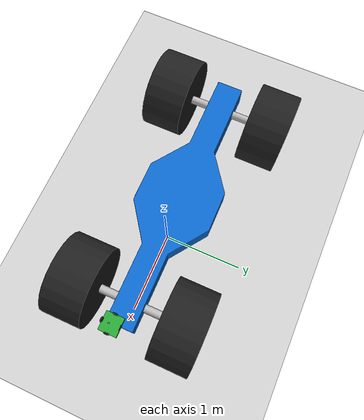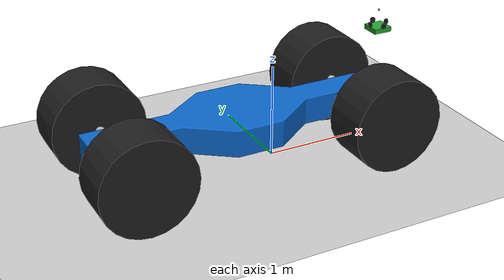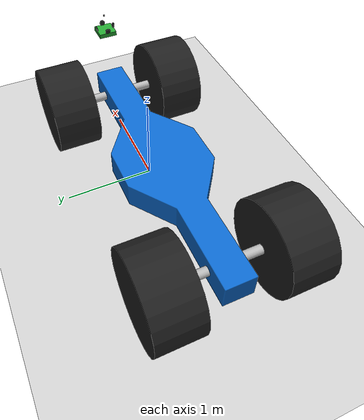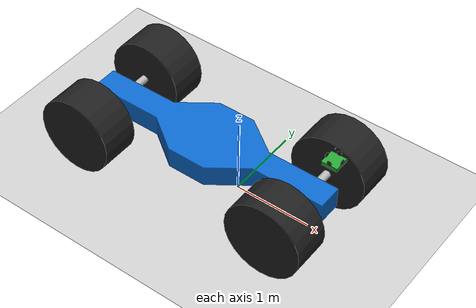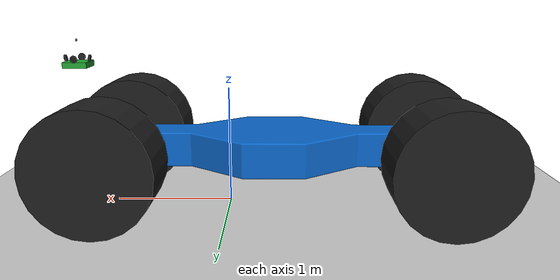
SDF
<sdf version="1.6">
 <world name="default">
  <scene><ambient>0.4 0.4 0.4 1</ambient><background>0.7 0.7 0.7 1</background><shadows>1</shadows></scene>
  <light name="sun" type="directional">
   <pose>0 0 10 0 -0 0</pose>
   <diffuse>0.8 0.8 0.8 1</diffuse>
   <specular>0.2 0.2 0.2 1</specular>
   <attenuation>
    <range>1000</range>
    <constant>0.9</constant>
    <linear>0.01</linear>
    <quadratic>0.001</quadratic>
   </attenuation>
   <direction>-0.5 0.1 -0.9</direction>
  </light>
  <model name="ground_plane">
   <static>1</static>
   <link name="link">
    <collision name="collision">
     <geometry><plane><normal>0 0 1</normal><size>100 100</size></plane></geometry>
     <surface>
      <contact><collide_bitmask>65535</collide_bitmask></contact>
      <friction><ode><mu>100</mu><mu2>50</mu2></ode></friction>
     </surface>
    </collision>
    <visual name="visual">
     <cast_shadows>0</cast_shadows>
     <geometry><plane><normal>0 0 1</normal><size>100 100</size></plane></geometry>
     <material>
      <script><uri>file://media/materials/scripts/gazebo.material</uri><name>Gazebo/Grey</name></script>
     </material>
    </visual>
   </link>
  </model>
  <physics name="default_physics" default="0" type="ode">
   <real_time_update_rate>1000</real_time_update_rate>
   <max_step_size>0.001</max_step_size>
   <real_time_factor>1</real_time_factor>
   <ode>
    <solver>
     <type>quick</type>
     <iters>150</iters>
     <precon_iters>0</precon_iters>
     <sor>1.4</sor>
     <use_dynamic_moi_rescaling>1</use_dynamic_moi_rescaling>
    </solver>
    <constraints>
     <cfm>1e-05</cfm>
     <erp>0.2</erp>
     <contact_max_correcting_vel>2000</contact_max_correcting_vel>
     <contact_surface_layer>0.01</contact_surface_layer>
    </constraints>
   </ode>
  </physics>
  <gravity>0 0 -9.8</gravity>
  <magnetic_field>6e-06 2.3e-05 -4.2e-05</magnetic_field>
  <atmosphere type="adiabatic"/>
  <audio><device>default</device></audio>
  <spherical_coordinates>
   <surface_model>EARTH_WGS84</surface_model>
   <latitude_deg>0</latitude_deg>
   <longitude_deg>0</longitude_deg>
   <elevation>0</elevation>
   <heading_deg>0</heading_deg>
  </spherical_coordinates>
  <model name="robot">
   <link name="base_link">
    <inertial>
     <pose>0.003293 0 0.001397 0 -0 0</pose>
     <mass>501</mass>
     <inertia>
      <ixx>12.2842</ixx>
      <ixy>0</ixy>
      <ixz>-1.15269</ixz>
      <iyy>379.501</iyy>
      <iyz>0</iyz>
      <izz>368.474</izz>
     </inertia>
    </inertial>
    <collision name="base_link_collision"><geometry><sphere><radius>0.01</radius></sphere></geometry></collision>
    <collision name="base_link_fixed_joint_lump__baseframe_collision_1">
     <pose>0 0 0 1.5708 -0 0</pose>
     <geometry>
      <mesh><scale>1 1 1</scale><uri>/home/sandstone/catkin_ws/src/et_sim/meshes/baseframe.dae</uri></mesh>
     </geometry>
    </collision>
    <collision name="base_link_fixed_joint_lump__back_steeraxis_collision_2">
     <pose>-1.35 0 0 1.5708 -0 0</pose>
     <geometry><cylinder><length>0.8</length><radius>0.05</radius></cylinder></geometry>
    </collision>
    <collision name="base_link_fixed_joint_lump__camsys_base_collision_3">
     <pose>1.65 0 0.7 0 -0 0</pose>
     <geometry><box><size>0.2 0.2 0.05</size></box></geometry>
    </collision>
    <collision name="base_link_fixed_joint_lump__zed2_frame_collision_4">
     <pose>1.65 0 0.9 0 0.174533 0</pose>
     <geometry><box><size>0.01 0.01 0.01</size></box></geometry>
    </collision>
    <collision name="base_link_fixed_joint_lump__zed2_optical_frame_collision_5">
     <pose>1.65 0 0.9 -1.74533 -0 -1.5708</pose>
     <geometry><cylinder><length>0.01</length><radius>0.01</radius></cylinder></geometry>
    </collision>
    <collision name="base_link_fixed_joint_lump__camsys_east_cam_link_collision_6">
     <pose>1.65 -0.1 0.75 0 0.174533 -1.5708</pose>
     <geometry><cylinder><length>0.01</length><radius>0.03</radius></cylinder></geometry>
    </collision>
    <collision name="base_link_fixed_joint_lump__camsys_north_cam_link_collision_7">
     <pose>1.75 0 0.75 0 0.174533 0</pose>
     <geometry><cylinder><length>0.01</length><radius>0.03</radius></cylinder></geometry>
    </collision>
    <collision name="base_link_fixed_joint_lump__camsys_south_cam_link_collision_8">
     <pose>1.55 0 0.75 0 0.174533 3.14159</pose>
     <geometry><cylinder><length>0.01</length><radius>0.03</radius></cylinder></geometry>
    </collision>
    <collision name="base_link_fixed_joint_lump__camsys_west_cam_link_collision_9">
     <pose>1.65 0.1 0.75 0 0.174533 1.5708</pose>
     <geometry><cylinder><length>0.01</length><radius>0.03</radius></cylinder></geometry>
    </collision>
    <collision name="base_link_fixed_joint_lump__front_steeraxis_collision_10">
     <pose>1.35 0 0 1.5708 -0 0</pose>
     <geometry><cylinder><length>0.8</length><radius>0.05</radius></cylinder></geometry>
    </collision>
    <visual name="base_link_visual"><geometry><sphere><radius>0.01</radius></sphere></geometry></visual>
    <visual name="base_link_fixed_joint_lump__baseframe_visual_1">
     <pose>0 0 0 1.5708 -0 0</pose>
     <geometry>
      <mesh><scale>1 1 1</scale><uri>/home/sandstone/catkin_ws/src/et_sim/meshes/baseframe.dae</uri></mesh>
     </geometry>
    </visual>
    <visual name="base_link_fixed_joint_lump__back_steeraxis_visual_2">
     <pose>-1.35 0 0 1.5708 -0 0</pose>
     <geometry><cylinder><length>0.8</length><radius>0.05</radius></cylinder></geometry>
    </visual>
    <visual name="base_link_fixed_joint_lump__camsys_base_visual_3">
     <pose>1.65 0 0.7 0 -0 0</pose>
     <geometry><box><size>0.2 0.2 0.05</size></box></geometry>
     <material>
      <script><name>Gazebo/Green</name><uri>file://media/materials/scripts/gazebo.material</uri></script>
     </material>
    </visual>
    <visual name="base_link_fixed_joint_lump__zed2_frame_visual_4">
     <pose>1.65 0 0.9 0 0.174533 0</pose>
     <geometry><box><size>0.01 0.01 0.01</size></box></geometry>
     <material><script><uri>__default__</uri><name>__default__</name></script></material>
    </visual>
    <visual name="base_link_fixed_joint_lump__zed2_optical_frame_visual_5">
     <pose>1.65 0 0.9 -1.74533 -0 -1.5708</pose>
     <geometry><cylinder><length>0.01</length><radius>0.01</radius></cylinder></geometry>
    </visual>
    <visual name="base_link_fixed_joint_lump__camsys_east_cam_link_visual_6">
     <pose>1.65 -0.1 0.75 3.14159 1.39626 1.5708</pose>
     <geometry><cylinder><length>0.01</length><radius>0.03</radius></cylinder></geometry>
     <material>
      <script><name>Gazebo/Black</name><uri>file://media/materials/scripts/gazebo.material</uri></script>
     </material>
    </visual>
    <visual name="base_link_fixed_joint_lump__camsys_north_cam_link_visual_7">
     <pose>1.75 0 0.75 3.14159 1.39626 3.14159</pose>
     <geometry><cylinder><length>0.01</length><radius>0.03</radius></cylinder></geometry>
     <material>
      <script><name>Gazebo/Black</name><uri>file://media/materials/scripts/gazebo.material</uri></script>
     </material>
    </visual>
    <visual name="base_link_fixed_joint_lump__camsys_south_cam_link_visual_8">
     <pose>1.55 0 0.75 3.14159 1.39626 0</pose>
     <geometry><cylinder><length>0.01</length><radius>0.03</radius></cylinder></geometry>
     <material>
      <script><name>Gazebo/Black</name><uri>file://media/materials/scripts/gazebo.material</uri></script>
     </material>
    </visual>
    <visual name="base_link_fixed_joint_lump__camsys_west_cam_link_visual_9">
     <pose>1.65 0.1 0.75 -3.14159 1.39626 -1.5708</pose>
     <geometry><cylinder><length>0.01</length><radius>0.03</radius></cylinder></geometry>
     <material>
      <script><name>Gazebo/Black</name><uri>file://media/materials/scripts/gazebo.material</uri></script>
     </material>
    </visual>
    <visual name="base_link_fixed_joint_lump__front_steeraxis_visual_10">
     <pose>1.35 0 0 1.5708 -0 0</pose>
     <geometry><cylinder><length>0.8</length><radius>0.05</radius></cylinder></geometry>
    </visual>
    <sensor name="zed2_frame_sensor" type="depth">
     <always_on>1</always_on>
     <update_rate>20</update_rate>
     <camera name="__default__">
      <horizontal_fov>1.91986</horizontal_fov>
      <image><format>R8G8B8</format><width>1920</width><height>1080</height></image>
      <clip><near>0.03</near><far>25</far></clip>
     </camera>
     <plugin name="zed2_frame_controller" filename="libgazebo_ros_openni_kinect.so">
      <alwaysOn>1</alwaysOn>
      <updateRate>20.0</updateRate>
      <cameraName>zed2</cameraName>
      <imageTopicName>zed2/ir/image_raw</imageTopicName>
      <cameraInfoTopicName>zed2/ir/camera_info</cameraInfoTopicName>
      <depthImageTopicName>zed2/depth/image_raw</depthImageTopicName>
      <depthImageCameraInfoTopicName>zed2/depth/camera_info</depthImageCameraInfoTopicName>
      <pointCloudTopicName>zed2/depth/points</pointCloudTopicName>
      <frameName>zed2_optical_frame</frameName>
      <pointCloudCutoff>0.5</pointCloudCutoff>
      <distortionK1>0.00000001</distortionK1>
      <distortionK2>0.00000001</distortionK2>
      <distortionK3>0.00000001</distortionK3>
      <distortionT1>0.00000001</distortionT1>
      <distortionT2>0.00000001</distortionT2>
      <CxPrime>0</CxPrime>
      <Cx>0</Cx>
      <Cy>0</Cy>
      <focalLength>0</focalLength>
      <hackBaseline>0</hackBaseline>
      <robotNamespace>/</robotNamespace>
     </plugin>
     <pose>1.65 0 0.9 0 0.174533 0</pose>
    </sensor>
    <sensor name="zed2_frame_sensor" type="depth">
     <always_on>1</always_on>
     <update_rate>20</update_rate>
     <camera name="__default__">
      <horizontal_fov>1.91986</horizontal_fov>
      <image><format>R8G8B8</format><width>1920</width><height>1080</height></image>
      <clip><near>0.01</near><far>25</far></clip>
     </camera>
     <plugin name="zed2_frame_controller" filename="libgazebo_ros_openni_kinect.so">
      <alwaysOn>1</alwaysOn>
      <updateRate>20.0</updateRate>
      <cameraName>zed2</cameraName>
      <imageTopicName>zed2/rgb/image_raw</imageTopicName>
      <cameraInfoTopicName>zed2/rgb/camera_info</cameraInfoTopicName>
      <depthImageTopicName>zed2/depth/image_raw</depthImageTopicName>
      <depthImageCameraInfoTopicName>zed2/depth/camera_info</depthImageCameraInfoTopicName>
      <pointCloudTopicName>zed2/rgb/points</pointCloudTopicName>
      <frameName>zed2_optical_frame</frameName>
      <pointCloudCutoff>0.5</pointCloudCutoff>
      <distortionK1>0.00000001</distortionK1>
      <distortionK2>0.00000001</distortionK2>
      <distortionK3>0.00000001</distortionK3>
      <distortionT1>0.00000001</distortionT1>
      <distortionT2>0.00000001</distortionT2>
      <CxPrime>0</CxPrime>
      <Cx>0</Cx>
      <Cy>0</Cy>
      <focalLength>0</focalLength>
      <hackBaseline>0</hackBaseline>
      <robotNamespace>/</robotNamespace>
     </plugin>
     <pose>1.65 0 0.9 0 0.174533 0</pose>
    </sensor>
    <sensor name="camsys_east_cam_camera_sensor" type="camera">
     <update_rate>50</update_rate>
     <camera name="__default__">
      <horizontal_fov>1.91986</horizontal_fov>
      <image><format>R8G8B8</format><width>4192</width><height>3120</height></image>
      <clip><near>0.01</near><far>100</far></clip>
     </camera>
     <plugin name="camsys_east_cam_camera_controller" filename="libgazebo_ros_camera.so">
      <cameraName>camsys_east_cam</cameraName>
      <imageTopicName>camsys_east_topic</imageTopicName>
      <cameraInfoTopicName>camsys_east_info_topic</cameraInfoTopicName>
      <frameName>camsys_east_cam_optical_frame</frameName>
      <robotNamespace>/</robotNamespace>
     </plugin>
     <pose>1.65 -0.1 0.75 0 0.174533 -1.5708</pose>
    </sensor>
    <sensor name="camsys_north_cam_camera_sensor" type="camera">
     <update_rate>50</update_rate>
     <camera name="__default__">
      <horizontal_fov>1.91986</horizontal_fov>
      <image><format>R8G8B8</format><width>4192</width><height>3120</height></image>
      <clip><near>0.01</near><far>100</far></clip>
     </camera>
     <plugin name="camsys_north_cam_camera_controller" filename="libgazebo_ros_camera.so">
      <cameraName>camsys_north_cam</cameraName>
      <imageTopicName>camsys_north_topic</imageTopicName>
      <cameraInfoTopicName>camsys_north_info_topic</cameraInfoTopicName>
      <frameName>camsys_north_cam_optical_frame</frameName>
      <robotNamespace>/</robotNamespace>
     </plugin>
     <pose>1.75 0 0.75 0 0.174533 0</pose>
    </sensor>
    <sensor name="camsys_south_cam_camera_sensor" type="camera">
     <update_rate>50</update_rate>
     <camera name="__default__">
      <horizontal_fov>1.91986</horizontal_fov>
      <image><format>R8G8B8</format><width>4192</width><height>3120</height></image>
      <clip><near>0.01</near><far>100</far></clip>
     </camera>
     <plugin name="camsys_south_cam_camera_controller" filename="libgazebo_ros_camera.so">
      <cameraName>camsys_south_cam</cameraName>
      <imageTopicName>camsys_south_topic</imageTopicName>
      <cameraInfoTopicName>camsys_south_info_topic</cameraInfoTopicName>
      <frameName>camsys_south_cam_optical_frame</frameName>
      <robotNamespace>/</robotNamespace>
     </plugin>
     <pose>1.55 0 0.75 0 0.174533 3.14159</pose>
    </sensor>
    <sensor name="camsys_west_cam_camera_sensor" type="camera">
     <update_rate>50</update_rate>
     <camera name="__default__">
      <horizontal_fov>1.91986</horizontal_fov>
      <image><format>R8G8B8</format><width>4192</width><height>3120</height></image>
      <clip><near>0.01</near><far>100</far></clip>
     </camera>
     <plugin name="camsys_west_cam_camera_controller" filename="libgazebo_ros_camera.so">
      <cameraName>camsys_west_cam</cameraName>
      <imageTopicName>camsys_west_topic</imageTopicName>
      <cameraInfoTopicName>camsys_west_info_topic</cameraInfoTopicName>
      <frameName>camsys_west_cam_optical_frame</frameName>
      <robotNamespace>/</robotNamespace>
     </plugin>
     <pose>1.65 0.1 0.75 0 0.174533 1.5708</pose>
    </sensor>
   </link>
   <link name="back_left_wheel">
    <pose>-1.35 0.65 0 0 -0 0</pose>
    <inertial>
     <mass>100</mass>
     <inertia><ixx>8.33333</ixx><ixy>0</ixy><ixz>0</ixz><iyy>8.33333</iyy><iyz>0</iyz><izz>12.5</izz></inertia>
    </inertial>
    <collision name="back_left_wheel_collision">
     <pose>0 0 0 1.5708 -0 0</pose>
     <geometry><cylinder><length>0.5</length><radius>0.5</radius></cylinder></geometry>
     <surface>
      <contact><ode><kp>1e+09</kp><kd>1</kd></ode></contact>
      <friction><ode><mu>10</mu><mu2>10</mu2></ode></friction>
     </surface>
    </collision>
    <visual name="back_left_wheel_visual">
     <pose>0 0 0 1.5708 -0 0</pose>
     <geometry><cylinder><length>0.5</length><radius>0.5</radius></cylinder></geometry>
     <material>
      <script><name>Gazebo/Black</name><uri>file://media/materials/scripts/gazebo.material</uri></script>
     </material>
    </visual>
   </link>
   <joint name="back_left_wheel_joint" type="revolute">
    <child>back_left_wheel</child>
    <parent>base_link</parent>
    <axis>
     <xyz>0 1 0</xyz>
     <limit><lower>-1e+16</lower><upper>1e+16</upper></limit>
     <dynamics><spring_reference>0</spring_reference><spring_stiffness>0</spring_stiffness></dynamics>
     <use_parent_model_frame>1</use_parent_model_frame>
    </axis>
   </joint>
   <link name="back_right_wheel">
    <pose>-1.35 -0.65 0 0 -0 0</pose>
    <inertial>
     <mass>100</mass>
     <inertia><ixx>8.33333</ixx><ixy>0</ixy><ixz>0</ixz><iyy>8.33333</iyy><iyz>0</iyz><izz>12.5</izz></inertia>
    </inertial>
    <collision name="back_right_wheel_collision">
     <pose>0 0 0 1.5708 -0 0</pose>
     <geometry><cylinder><length>0.5</length><radius>0.5</radius></cylinder></geometry>
     <surface>
      <contact><ode><kp>1e+09</kp><kd>1</kd></ode></contact>
      <friction><ode><mu>10</mu><mu2>10</mu2></ode></friction>
     </surface>
    </collision>
    <visual name="back_right_wheel_visual">
     <pose>0 0 0 1.5708 -0 0</pose>
     <geometry><cylinder><length>0.5</length><radius>0.5</radius></cylinder></geometry>
     <material>
      <script><name>Gazebo/Black</name><uri>file://media/materials/scripts/gazebo.material</uri></script>
     </material>
    </visual>
   </link>
   <joint name="back_right_wheel_joint" type="revolute">
    <child>back_right_wheel</child>
    <parent>base_link</parent>
    <axis>
     <xyz>0 1 0</xyz>
     <limit><lower>-1e+16</lower><upper>1e+16</upper></limit>
     <dynamics><spring_reference>0</spring_reference><spring_stiffness>0</spring_stiffness></dynamics>
     <use_parent_model_frame>1</use_parent_model_frame>
    </axis>
   </joint>
   <link name="front_left_wheel">
    <pose>1.35 0.65 0 0 -0 0</pose>
    <inertial>
     <mass>100</mass>
     <inertia><ixx>8.33333</ixx><ixy>0</ixy><ixz>0</ixz><iyy>8.33333</iyy><iyz>0</iyz><izz>12.5</izz></inertia>
    </inertial>
    <collision name="front_left_wheel_collision">
     <pose>0 0 0 1.5708 -0 0</pose>
     <geometry><cylinder><length>0.5</length><radius>0.5</radius></cylinder></geometry>
     <surface>
      <contact><ode><kp>1e+09</kp><kd>1</kd></ode></contact>
      <friction><ode><mu>10</mu><mu2>10</mu2></ode></friction>
     </surface>
    </collision>
    <visual name="front_left_wheel_visual">
     <pose>0 0 0 1.5708 -0 0</pose>
     <geometry><cylinder><length>0.5</length><radius>0.5</radius></cylinder></geometry>
     <material>
      <script><name>Gazebo/Black</name><uri>file://media/materials/scripts/gazebo.material</uri></script>
     </material>
    </visual>
   </link>
   <joint name="front_left_wheel_joint" type="revolute">
    <child>front_left_wheel</child>
    <parent>base_link</parent>
    <axis>
     <xyz>0 1 0</xyz>
     <limit><lower>-1e+16</lower><upper>1e+16</upper></limit>
     <dynamics><spring_reference>0</spring_reference><spring_stiffness>0</spring_stiffness></dynamics>
     <use_parent_model_frame>1</use_parent_model_frame>
    </axis>
   </joint>
   <link name="front_right_wheel">
    <pose>1.35 -0.65 0 0 -0 0</pose>
    <inertial>
     <mass>100</mass>
     <inertia><ixx>8.33333</ixx><ixy>0</ixy><ixz>0</ixz><iyy>8.33333</iyy><iyz>0</iyz><izz>12.5</izz></inertia>
    </inertial>
    <collision name="front_right_wheel_collision">
     <pose>0 0 0 1.5708 -0 0</pose>
     <geometry><cylinder><length>0.5</length><radius>0.5</radius></cylinder></geometry>
     <surface>
      <contact><ode><kp>1e+09</kp><kd>1</kd></ode></contact>
      <friction><ode><mu>10</mu><mu2>10</mu2></ode></friction>
     </surface>
    </collision>
    <visual name="front_right_wheel_visual">
     <pose>0 0 0 1.5708 -0 0</pose>
     <geometry><cylinder><length>0.5</length><radius>0.5</radius></cylinder></geometry>
     <material>
      <script><name>Gazebo/Black</name><uri>file://media/materials/scripts/gazebo.material</uri></script>
     </material>
    </visual>
   </link>
   <joint name="front_right_wheel_joint" type="revolute">
    <child>front_right_wheel</child>
    <parent>base_link</parent>
    <axis>
     <xyz>0 1 0</xyz>
     <limit><lower>-1e+16</lower><upper>1e+16</upper></limit>
     <dynamics><spring_reference>0</spring_reference><spring_stiffness>0</spring_stiffness></dynamics>
     <use_parent_model_frame>1</use_parent_model_frame>
    </axis>
   </joint>
   <static>0</static>
   <plugin name="gazebo_ros_control" filename="libgazebo_ros_control.so">
    <robotNamespace>/</robotNamespace>
   </plugin>
   <pose>-0.387148 4e-06 0.499938 -1e-06 0 0</pose>
  </model>
 </world>
</sdf>
